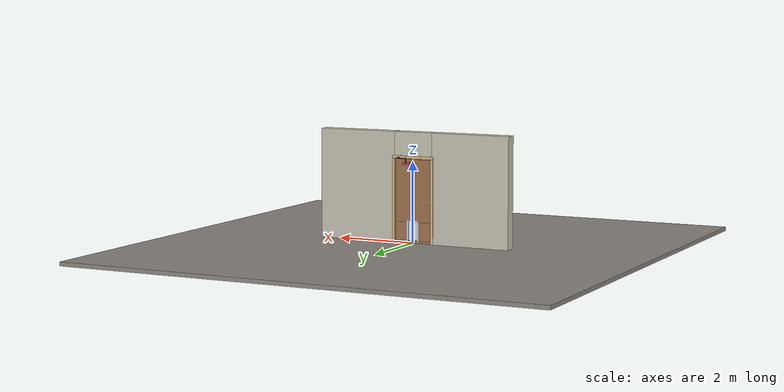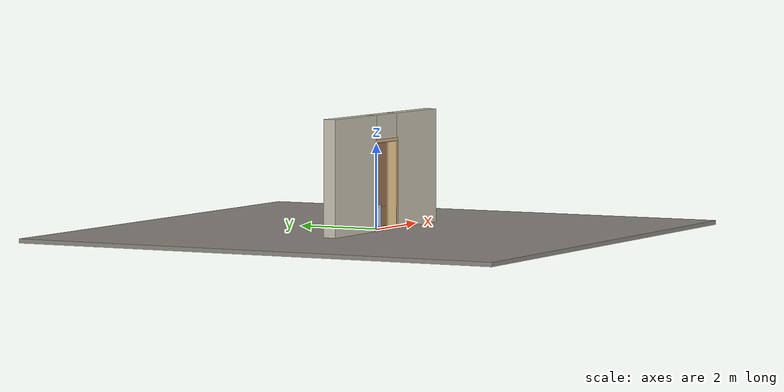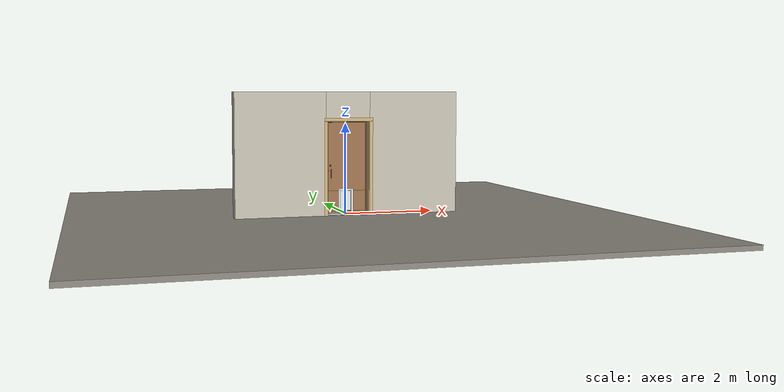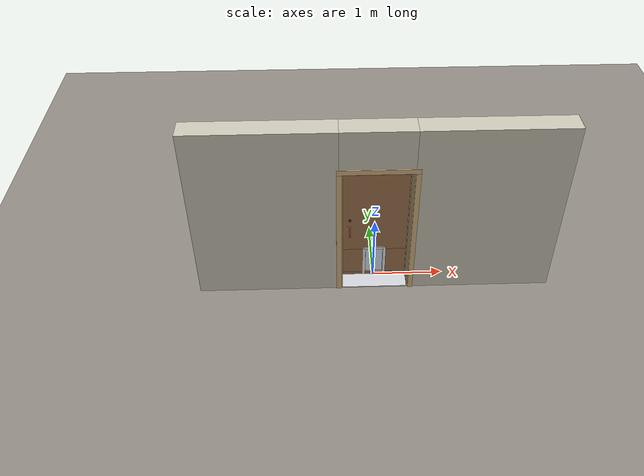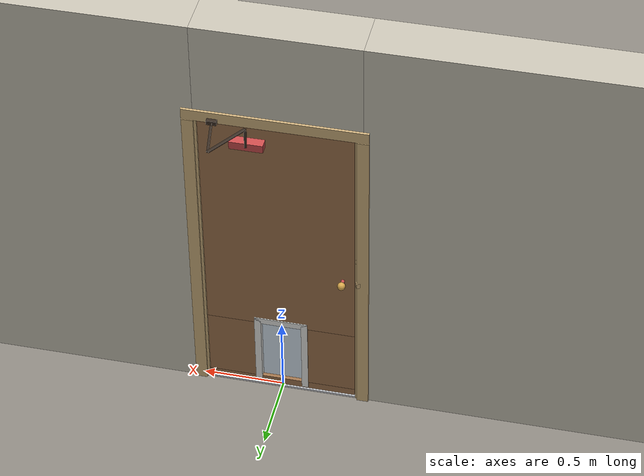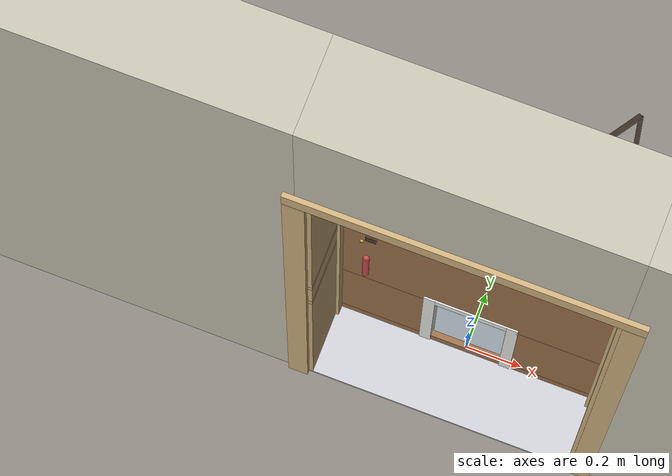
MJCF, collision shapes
<?xml version="1.0" ?>
<mujoco model="db0767_swing_single_full">
  <compiler angle="radian" meshdir="../../hardware" texturedir="../../textures" autolimits="true" inertiafromgeom="false"/>
  <option timestep="0.002" integrator="implicitfast" cone="elliptic" impratio="10" noslip_iterations="3">
    <flag multiccd="enable"/>
  </option>
  <size memory="16M"/>
  <default>
    <geom condim="4" solref="0.005 1" solimp="0.95 0.99 0.001"/>
    <joint solreflimit="0.005 1" solimplimit="0.95 0.99 0.001"/>
    <tendon solreflimit="0.005 1"/>
    <equality solref="0.002 1"/>
  </default>
  <visual>
    <headlight ambient="0.4 0.4 0.4" diffuse="0.7 0.7 0.7" specular="0.2 0.2 0.2"/>
    <quality shadowsize="4096"/>
    <map znear="0.01" zfar="60"/>
  </visual>
  <asset>
    <mesh name="closer_body_78399c60f5" file="closer_body_78399c60f5.obj"/>
    <mesh name="cyl_face_e9e5036966" file="cyl_face_e9e5036966.obj"/>
    <mesh name="handleset_beb5526ad2" file="handleset_beb5526ad2.obj"/>
    <mesh name="hinge_2af0f4d6ca" file="hinge_2af0f4d6ca.obj"/>
    <mesh name="hinge_jamb_c0c0a62ada" file="hinge_jamb_c0c0a62ada.obj"/>
    <mesh name="knob_d1888f6f03" file="knob_d1888f6f03.obj"/>
    <material name="mat_floor" rgba="0.55 0.53 0.5 1" specular="0.2" shininess="0.15" reflectance="0"/>
    <material name="mat_wall" rgba="0.78 0.76 0.7 1" specular="0.2" shininess="0.1" reflectance="0"/>
    <material name="mat_leaf" rgba="0.62 0.45 0.3 1" specular="0.2" shininess="0.5" reflectance="0"/>
    <material name="mat_glass" rgba="0.85 0.92 0.95 0.25" specular="0.2" shininess="0.95" reflectance="0.1"/>
    <material name="mat_hinge" rgba="0.65 0.66 0.68 1" specular="0.74" shininess="0.5" reflectance="0.36"/>
    <material name="mat_op_bronze" rgba="0.3 0.22 0.15 1" specular="0.74" shininess="0.5" reflectance="0.36"/>
    <material name="mat_op_brass" rgba="0.85 0.66 0.3 1" specular="0.8" shininess="0.75" reflectance="0.4"/>
    <material name="mat_trim" rgba="0.85 0.66 0.3 1" specular="0.8" shininess="0.75" reflectance="0.4"/>
    <material name="mat_bolt" rgba="0.85 0.66 0.3 1" specular="0.8" shininess="0.75" reflectance="0.4"/>
    <material name="mat_deadbolt" rgba="0.85 0.66 0.3 1" specular="0.8" shininess="0.75" reflectance="0.4"/>
    <material name="mat_frame" rgba="0.82 0.7 0.5 1" specular="0.2" shininess="0.45" reflectance="0"/>
    <material name="mat_seal" rgba="0.1 0.1 0.1 1" specular="0.2" shininess="0.1" reflectance="0"/>
    <material name="mat_threshold" rgba="0.8 0.81 0.83 1" specular="0.8" shininess="0.6" reflectance="0.4"/>
    <material name="mat_closer" rgba="0.22 0.17 0.13 1" specular="0.8" shininess="0.6" reflectance="0.4"/>
    <material name="mat_petframe" rgba="0.92 0.92 0.9 1" specular="0.2" shininess="0.6" reflectance="0"/>
    <material name="mat_petflap" rgba="0.85 0.9 0.95 0.45" specular="0.2" shininess="0.7" reflectance="0.1"/>
    <texture name="skybox" type="skybox" builtin="gradient" rgb1="0.6 0.7 0.85" rgb2="0.9 0.92 0.95" width="256" height="256"/>
  </asset>
  <worldbody>
    <light name="sun" pos="1.5 -2.5 4" dir="-0.3 0.5 -0.8" directional="true" diffuse="0.8 0.8 0.8" specular="0.3 0.3 0.3" castshadow="true"/>
    <light name="fill" pos="-1.5 2.5 3" dir="0.3 -0.5 -0.7" directional="true" diffuse="0.35 0.35 0.4" castshadow="false"/>
    <camera name="robot_view" pos="0 -2.663187 1.734312" xyaxes="1 0 0 0 0.26963 0.962964" fovy="52"/>
    <camera name="far_view" pos="0 2.421187 1.734312" xyaxes="-1 0 0 0 -0.26963 0.962964" fovy="52"/>
    <camera name="iso" pos="-1.932062 -2.256438 2.141063" xyaxes="0.741536 -0.670913 0 0.242917 0.268487 0.932151" fovy="46"/>
    <camera name="detail_handle" pos="-0.1715 -0.882 1.185" xyaxes="0.97561 0.219512 0 -0.070934 0.315262 0.94635" fovy="38"/>
    <geom name="floor" type="box" size="6 6 0.05" pos="0 0 -0.05" material="mat_floor" group="0" contype="1" conaffinity="1" friction="0.8 0.005 0.0001" density="2400"/>
    <geom name="wall_left" type="box" size="0.99525 0.15 1.35" pos="-1.50475 -0.121 1.35" material="mat_wall" group="0" contype="1" conaffinity="1" friction="0.6 0.005 0.0001" density="800"/>
    <geom name="wall_right" type="box" size="1.01025 0.15 1.35" pos="1.48975 -0.121 1.35" material="mat_wall" group="0" contype="1" conaffinity="1" friction="0.6 0.005 0.0001" density="800"/>
    <geom name="wall_header" type="box" size="0.4945 0.15 0.303" pos="-0.015 -0.121 2.397" material="mat_wall" group="0" contype="1" conaffinity="1" friction="0.6 0.005 0.0001" density="800"/>
    <geom name="hinge_0_jamb" type="mesh" mesh="hinge_jamb_c0c0a62ada" pos="0.4575 0.029 0.267" quat="0 0 0 1" material="mat_hinge" group="1" contype="0" conaffinity="0" density="7850"/>
    <geom name="hinge_1_jamb" type="mesh" mesh="hinge_jamb_c0c0a62ada" pos="0.4575 0.029 1.029" quat="0 0 0 1" material="mat_hinge" group="1" contype="0" conaffinity="0" density="7850"/>
    <geom name="hinge_2_jamb" type="mesh" mesh="hinge_jamb_c0c0a62ada" pos="0.4575 0.029 1.861" quat="0 0 0 1" material="mat_hinge" group="1" contype="0" conaffinity="0" density="7850"/>
    <geom name="leaf_deadbolt_strike_b" type="box" size="0.0155 0.003 0.0005" pos="-0.46 0 1.1215" quat="0.5 0.5 0.5 0.5" material="mat_deadbolt" group="1" contype="0" conaffinity="0" density="7800"/>
    <geom name="leaf_deadbolt_strike_l" type="box" size="0.003 0.0155 0.0005" pos="-0.46 -0.0125 1.14" quat="0.5 0.5 0.5 0.5" material="mat_deadbolt" group="1" contype="0" conaffinity="0" density="7800"/>
    <geom name="leaf_deadbolt_strike_t" type="box" size="0.0155 0.003 0.0005" pos="-0.46 0 1.1585" quat="0.5 0.5 0.5 0.5" material="mat_deadbolt" group="1" contype="0" conaffinity="0" density="7800"/>
    <geom name="leaf_deadbolt_strike_r" type="box" size="0.003 0.0155 0.0005" pos="-0.46 0.0125 1.14" quat="0.5 0.5 0.5 0.5" material="mat_deadbolt" group="1" contype="0" conaffinity="0" density="7800"/>
    <geom name="jamb_hinge" type="box" size="0.0095 0.15 1.0225" pos="0.47 -0.121 1.0225" material="mat_frame" group="0" contype="1" conaffinity="1" friction="0.6 0.005 0.0001" density="400"/>
    <geom name="strike_965_wall_n" type="box" size="0.0245 0.131575 0.0167" pos="-0.485 -0.139425 0.965" material="mat_frame" group="0" contype="1" conaffinity="1" friction="0.6 0.005 0.0001" density="400"/>
    <geom name="strike_965_wall_p" type="box" size="0.0245 0.008 0.0167" pos="-0.485 0.01585 0.965" material="mat_frame" group="0" contype="1" conaffinity="1" friction="0.6 0.005 0.0001" density="400"/>
    <geom name="strike_965_ramp" type="box" size="0.0245 0.01649 0.0167" pos="-0.489636 0.028673 0.965" quat="0.977148 0 0 0.212558" material="mat_frame" group="0" contype="1" conaffinity="1" friction="0.12 0.005 0.0001" density="400"/>
    <geom name="strike_965_back" type="box" size="0.01615 0.00785 0.0167" pos="-0.49335 0 0.965" material="mat_frame" group="0" contype="1" conaffinity="1" friction="0.6 0.005 0.0001" density="400"/>
    <geom name="strike_1140_wall_n" type="box" size="0.0245 0.13075 0.0155" pos="-0.485 -0.14025 1.14" material="mat_frame" group="0" contype="1" conaffinity="1" friction="0.6 0.005 0.0001" density="400"/>
    <geom name="strike_1140_wall_p" type="box" size="0.0245 0.00975 0.0155" pos="-0.485 0.01925 1.14" material="mat_frame" group="0" contype="1" conaffinity="1" friction="0.6 0.005 0.0001" density="400"/>
    <geom name="strike_1140_back" type="box" size="0.0098 0.0095 0.0155" pos="-0.4997 0 1.14" material="mat_frame" group="0" contype="1" conaffinity="1" friction="0.6 0.005 0.0001" density="400"/>
    <geom name="jamb_strike_0" type="box" size="0.0245 0.15 0.47415" pos="-0.485 -0.121 0.47415" material="mat_frame" group="0" contype="1" conaffinity="1" friction="0.6 0.005 0.0001" density="400"/>
    <geom name="jamb_strike_1" type="box" size="0.0245 0.15 0.0714" pos="-0.485 -0.121 1.0531" material="mat_frame" group="0" contype="1" conaffinity="1" friction="0.6 0.005 0.0001" density="400"/>
    <geom name="jamb_strike_2" type="box" size="0.0245 0.15 0.44475" pos="-0.485 -0.121 1.60025" material="mat_frame" group="0" contype="1" conaffinity="1" friction="0.6 0.005 0.0001" density="400"/>
    <geom name="jamb_head" type="box" size="0.4945 0.15 0.0095" pos="-0.015 -0.121 2.0545" material="mat_frame" group="0" contype="1" conaffinity="1" friction="0.6 0.005 0.0001" density="400"/>
    <geom name="head_stud" type="box" size="0.4945 0.15 0.015" pos="-0.015 -0.121 2.079" material="mat_wall" group="0" contype="1" conaffinity="1" friction="0.6 0.005 0.0001" density="500"/>
    <geom name="stop_hinge" type="box" size="0.0055 0.016 1.0225" pos="0.455 -0.0385 1.0225" material="mat_frame" group="0" contype="1" conaffinity="1" friction="0.6 0.005 0.0001" density="400"/>
    <geom name="stop_strike" type="box" size="0.0055 0.016 1.0225" pos="-0.455 -0.0385 1.0225" material="mat_frame" group="0" contype="1" conaffinity="1" friction="0.6 0.005 0.0001" density="400"/>
    <geom name="stop_head" type="box" size="0.4605 0.016 0.0055" pos="0 -0.0385 2.0395" material="mat_frame" group="0" contype="1" conaffinity="1" friction="0.6 0.005 0.0001" density="400"/>
    <geom name="seal_hinge" type="box" size="0.004 0.003 1.0225" pos="0.4575 -0.025 1.0225" material="mat_seal" group="1" contype="0" conaffinity="0" density="1100"/>
    <geom name="seal_strike" type="box" size="0.004 0.003 1.0225" pos="-0.4575 -0.025 1.0225" material="mat_seal" group="1" contype="0" conaffinity="0" density="1100"/>
    <geom name="seal_head" type="box" size="0.4405 0.003 0.008" pos="0 -0.025 2.033" material="mat_seal" group="1" contype="0" conaffinity="0" density="1100"/>
    <geom name="casing_l_n" type="box" size="0.035 0.008 1.032" pos="-0.5095 -0.279 1.0225" material="mat_frame" group="2" contype="0" conaffinity="0" density="400"/>
    <geom name="casing_r_n" type="box" size="0.035 0.008 1.032" pos="0.5095 -0.279 1.0225" material="mat_frame" group="2" contype="0" conaffinity="0" density="400"/>
    <geom name="casing_h_n" type="box" size="0.5445 0.008 0.035" pos="0 -0.279 2.094" material="mat_frame" group="2" contype="0" conaffinity="0" density="400"/>
    <geom name="casing_l_p" type="box" size="0.035 0.008 1.032" pos="-0.5095 0.037 1.0225" material="mat_frame" group="2" contype="0" conaffinity="0" density="400"/>
    <geom name="casing_r_p" type="box" size="0.035 0.008 1.032" pos="0.5095 0.037 1.0225" material="mat_frame" group="2" contype="0" conaffinity="0" density="400"/>
    <geom name="casing_h_p" type="box" size="0.5445 0.008 0.035" pos="0 0.037 2.094" material="mat_frame" group="2" contype="0" conaffinity="0" density="400"/>
    <geom name="threshold" type="box" size="0.4795 0.15 0.0065" pos="0 -0.121 0.0065" material="mat_threshold" group="0" contype="1" conaffinity="1" friction="0.5 0.005 0.0001" density="2700"/>
    <geom name="closer_bracket" type="box" size="0.03 0.012 0.014" pos="0.3605 0.057 2.075" material="mat_closer" group="1" contype="0" conaffinity="0" density="2700"/>
    <site name="approach_point" pos="0 -1.5 0" quat="1 0 0 0" size="0.05" rgba="0.2 0.9 0.2 0.5" group="4"/>
    <site name="goal_point" pos="0 1.5 0" quat="1 0 0 0" size="0.05" rgba="0.2 0.9 0.2 0.5" group="4"/>
    <site name="door_plane_center" pos="0 0 1.0225" quat="1 0 0 0" size="0.02" rgba="0.2 0.9 0.2 0.5" group="4"/>
    <body name="leaf" pos="0.4605 0 0">
      <inertial pos="-0.44417 0.005783 1.099601" mass="42.910923" quat="0.517011 -0.513135 -0.494132 -0.474578" diaginertia="2.734254468 17.435713229 20.125629158"/>
      <joint name="leaf_hinge" type="hinge" axis="0 0 -1" pos="-0.003 0.029 0" limited="true" range="0 1.570796" solreflimit="0.02 1" damping="6.25611" frictionloss="1.71993" stiffness="10.625184" springref="-1.309154" armature="0.02"/>
      <geom name="leaf_slab_below" type="box" size="0.457 0.022 0.0245" pos="-0.46 0 0.0415" material="mat_leaf" group="0" contype="1" conaffinity="1" friction="0.4 0.005 0.0001" density="1"/>
      <geom name="leaf_slab_above" type="box" size="0.457 0.022 0.7615" pos="-0.46 0 1.2795" material="mat_leaf" group="0" contype="1" conaffinity="1" friction="0.4 0.005 0.0001" density="1"/>
      <geom name="leaf_slab_left" type="box" size="0.1655 0.022 0.226" pos="-0.7515 0 0.292" material="mat_leaf" group="0" contype="1" conaffinity="1" friction="0.4 0.005 0.0001" density="1"/>
      <geom name="leaf_slab_right" type="box" size="0.1655 0.022 0.226" pos="-0.1685 0 0.292" material="mat_leaf" group="0" contype="1" conaffinity="1" friction="0.4 0.005 0.0001" density="1"/>
      <geom name="hinge_0" type="mesh" mesh="hinge_2af0f4d6ca" pos="-0.003 0.029 0.267" quat="0 0 0 1" material="mat_hinge" group="1" contype="0" conaffinity="0" density="7850"/>
      <geom name="hinge_1" type="mesh" mesh="hinge_2af0f4d6ca" pos="-0.003 0.029 1.029" quat="0 0 0 1" material="mat_hinge" group="1" contype="0" conaffinity="0" density="7850"/>
      <geom name="hinge_2" type="mesh" mesh="hinge_2af0f4d6ca" pos="-0.003 0.029 1.861" quat="0 0 0 1" material="mat_hinge" group="1" contype="0" conaffinity="0" density="7850"/>
      <geom name="leaf_handleset_n" type="mesh" mesh="handleset_beb5526ad2" pos="-0.812 -0.022 0.905" quat="0.707107 0.707107 0 0" material="mat_op_bronze" group="1" contype="0" conaffinity="0" density="3000"/>
      <geom name="leaf_handleset_col_n" type="capsule" size="0.011 0.09" pos="-0.812 -0.082 0.905" material="mat_op_bronze" group="3" contype="1" conaffinity="1" rgba="0.8 0.3 0.3 0.25" friction="0.7 0.01 0.0001" density="3000"/>
      <geom name="leaf_latch_bolt_faceplate" type="box" size="0.0006 0.01235 0.0267" pos="-0.9164 0 0.965" material="mat_bolt" group="1" contype="0" conaffinity="0" density="8500"/>
      <geom name="leaf_deadbolt_faceplate" type="box" size="0.0006 0.014 0.0245" pos="-0.9164 0 1.14" material="mat_deadbolt" group="1" contype="0" conaffinity="0" density="8500"/>
      <geom name="leaf_deadbolt_cylinder_face" type="mesh" mesh="cyl_face_e9e5036966" pos="-0.852 -0.022 1.14" quat="0 0 -0.707107 0.707107" material="mat_deadbolt" group="1" contype="0" conaffinity="0" density="7100"/>
      <geom name="closer_body" type="mesh" mesh="closer_body_78399c60f5" pos="-0.3 0.022 1.944" quat="0 0 0.707107 0.707107" material="mat_closer" group="1" contype="0" conaffinity="0" density="2000"/>
      <geom name="closer_body_col" type="box" size="0.1 0.03 0.025" pos="-0.3 0.052 1.944" material="mat_closer" group="3" contype="1" conaffinity="1" rgba="0.8 0.3 0.3 0.25" friction="0.6 0.005 0.0001" density="2000"/>
      <geom name="closer_pinion_shaft" type="cylinder" size="0.008 0.0655" pos="-0.3 0.08 2.0095" material="mat_closer" group="1" contype="0" conaffinity="0" density="2700"/>
      <geom name="pet_frame_top" type="box" size="0.165 0.028 0.02" pos="-0.46 0 0.537" material="mat_petframe" group="2" contype="0" conaffinity="0" density="1200"/>
      <geom name="pet_frame_l" type="box" size="0.02 0.028 0.265" pos="-0.605 0 0.292" material="mat_petframe" group="2" contype="0" conaffinity="0" density="1200"/>
      <geom name="pet_frame_r" type="box" size="0.02 0.028 0.265" pos="-0.315 0 0.292" material="mat_petframe" group="2" contype="0" conaffinity="0" density="1200"/>
      <site name="leaf_handleset_grip_n" pos="-0.812 -0.082 0.905" quat="1 0 0 0" size="0.012" rgba="0.2 0.9 0.2 0.5" group="4"/>
      <site name="leaf_edge_mid" pos="-0.917 0 1.012" quat="1 0 0 0" size="0.02" rgba="0.2 0.9 0.2 0.5" group="4"/>
      <body name="leaf_handle" pos="-0.847 0 0.965">
        <inertial pos="0 0.052948 0" mass="0.60261" quat="0.5 0.5 0.5 0.5" diaginertia="0.000156736 0.000451151 0.000451151"/>
        <joint name="leaf_handle_hinge" type="hinge" axis="0 1 0" limited="true" range="0 0.87" damping="0.142525" frictionloss="0.038" stiffness="0.5" springref="-0.5" armature="0.01"/>
        <geom name="leaf_handle_spindle" type="cylinder" size="0.006 0.03" pos="0 0 0" quat="0.707107 -0.707107 0 0" material="mat_op_brass" group="1" contype="0" conaffinity="0" density="7850"/>
        <geom name="leaf_handle_knob_p" type="mesh" mesh="knob_d1888f6f03" pos="0 0.022 0" quat="0 0 0.707107 0.707107" material="mat_op_brass" group="1" contype="0" conaffinity="0" density="3000"/>
        <geom name="leaf_handle_knob_col_p" type="sphere" size="0.0243" pos="0 0.0685 0" material="mat_op_brass" group="0" contype="1" conaffinity="1" friction="0.9 0.01 0.0001" density="3000"/>
        <geom name="leaf_handle_knob_neck_p" type="cylinder" size="0.011 0.012" pos="0 0.034 0" quat="0.707107 -0.707107 0 0" material="mat_op_brass" group="3" contype="1" conaffinity="1" rgba="0.8 0.3 0.3 0.25" friction="0.6 0.005 0.0001" density="3000"/>
        <site name="leaf_handle_grip_p" pos="0 0.0685 0" quat="1 0 0 0" size="0.012" rgba="0.2 0.9 0.2 0.5" group="4"/>
      </body>
      <body name="leaf_thumbpiece" pos="-0.812 -0.04 1.077">
        <inertial pos="0 0.004 0" mass="0.05184" quat="-0.5 0.5 0.5 0.5" diaginertia="0.000006981 0.000007488 0.000009124"/>
        <joint name="leaf_thumbpiece_hinge" type="hinge" axis="-1 0 0" pos="0 0 0.02" limited="true" range="0 0.35" damping="0.219407" frictionloss="0.058" stiffness="1.2" springref="-0.416667" armature="0.01"/>
        <geom name="leaf_thumbpiece_geom" type="box" size="0.018 0.004 0.02" pos="0 0 0" material="mat_op_bronze" group="0" contype="1" conaffinity="1" friction="0.6 0.005 0.0001" density="3000"/>
        <geom name="leaf_thumbpiece_boss" type="box" size="0.01 0.012 0.006" pos="0 0.012 0" material="mat_op_bronze" group="1" contype="0" conaffinity="0" density="3000"/>
        <site name="leaf_thumb_push" pos="0 -0.005 0.01" quat="1 0 0 0" size="0.01" rgba="0.2 0.9 0.2 0.5" group="4"/>
      </body>
      <body name="leaf_latch_bolt" pos="-0.917 0 0.965">
        <inertial pos="0.00865 0 0" mass="0.041419" quat="0.92388 0.382683 0 0" diaginertia="0.000000798 0.000005598 0.000005598"/>
        <joint name="leaf_latch_bolt_slide" type="slide" axis="1 0 0" limited="true" range="0 0.0127" damping="2" frictionloss="0.3" stiffness="300" springref="-0.008333" armature="0.1"/>
        <geom name="leaf_latch_bolt_capsule" type="capsule" size="0.00635 0.015" pos="0.00865 0 0" quat="0.707107 0 -0.707107 0" material="mat_bolt" group="0" contype="1" conaffinity="1" friction="0.2 0.005 0.0001" density="8500"/>
      </body>
      <body name="leaf_deadbolt" pos="-0.917 0 1.14">
        <inertial pos="0.0023 0 0" mass="0.18836" quat="0 0 0.707107 0.707107" diaginertia="0.000013829 0.000052194 0.000057986"/>
        <geom name="leaf_deadbolt_box" type="box" size="0.0277 0.008 0.0125" pos="0.0023 0 0" material="mat_deadbolt" group="0" contype="1" conaffinity="1" friction="0.3 0.005 0.0001" density="8500"/>
      </body>
      <body name="closer_arm_main" pos="-0.3 0.08 2.075" quat="0.881485 0 0 0.472212">
        <inertial pos="0.14 0 0" mass="0.12096" quat="1 0 0 0" diaginertia="0.000003588 0.00079128 0.000792852"/>
        <joint name="closer_pinion" type="hinge" axis="0 0 1" limited="false" damping="0.01" armature="0.002"/>
        <geom name="closer_arm_main_geom" type="box" size="0.14 0.008 0.005" pos="0.14 0 0" material="mat_closer" group="1" contype="0" conaffinity="0" density="2700"/>
        <body name="closer_arm_fore" pos="0.28 0 0" quat="0.371222 0 0 -0.928544">
          <inertial pos="0.128088 0 0" mass="0.076531" quat="1 0 0 0" diaginertia="0.000001771 0.000437665 0.000438201"/>
          <joint name="closer_elbow" type="hinge" axis="0 0 1" limited="false" damping="0.01" armature="0.002"/>
          <geom name="closer_arm_fore_geom" type="box" size="0.1125 0.007 0.004" pos="0.1125 0 0" material="mat_closer" group="1" contype="0" conaffinity="0" density="2700"/>
          <geom name="closer_fore_neck" type="box" size="0.0175 0.003 0.003" pos="0.2425 0 0" material="mat_closer" group="1" contype="0" conaffinity="0" density="2700"/>
          <geom name="closer_fore_pivot" type="cylinder" size="0.005 0.012" pos="0.26 0 0" material="mat_closer" group="1" contype="0" conaffinity="0" density="2700"/>
        </body>
      </body>
      <body name="pet_flap" pos="-0.46 0 0.517">
        <inertial pos="0 0 -0.225" mass="0.224067" quat="-0.5 0.5 0.5 0.5" diaginertia="0.001093819 0.003648179 0.0047414"/>
        <joint name="pet_flap_hinge" type="hinge" axis="-1 0 0" limited="true" range="-1.45 1.45" damping="0.02" frictionloss="0.02" armature="0.005"/>
        <geom name="pet_flap_geom" type="box" size="0.121 0.002 0.221" pos="0 0 -0.225" material="mat_petflap" group="0" contype="1" conaffinity="1" friction="0.6 0.005 0.0001" density="1250"/>
      </body>
    </body>
  </worldbody>
  <tendon>
    <fixed name="leaf_thumb_coupling" limited="true" range="0 10">
      <joint joint="leaf_latch_bolt_slide" coef="1"/>
      <joint joint="leaf_thumbpiece_hinge" coef="-0.039688"/>
    </fixed>
    <fixed name="leaf_latch_bolt_coupling" limited="true" range="0 10">
      <joint joint="leaf_latch_bolt_slide" coef="1"/>
      <joint joint="leaf_handle_hinge" coef="-0.015679"/>
    </fixed>
  </tendon>
  <equality>
    <connect name="closer_arm_connect" body1="closer_arm_fore" body2="world" anchor="0.26 0 0" active="true"/>
  </equality>
  <contact>
    <exclude body1="closer_arm_main" body2="leaf"/>
    <exclude body1="closer_arm_fore" body2="leaf"/>
    <exclude body1="closer_arm_main" body2="closer_arm_fore"/>
  </contact>
  <sensor>
    <jointpos name="leaf_hinge_pos" joint="leaf_hinge"/>
    <jointvel name="leaf_hinge_vel" joint="leaf_hinge"/>
    <jointpos name="leaf_handle_hinge_pos" joint="leaf_handle_hinge"/>
    <jointvel name="leaf_handle_hinge_vel" joint="leaf_handle_hinge"/>
    <jointpos name="leaf_thumbpiece_hinge_pos" joint="leaf_thumbpiece_hinge"/>
    <jointvel name="leaf_thumbpiece_hinge_vel" joint="leaf_thumbpiece_hinge"/>
    <jointpos name="leaf_latch_bolt_slide_pos" joint="leaf_latch_bolt_slide"/>
    <jointvel name="leaf_latch_bolt_slide_vel" joint="leaf_latch_bolt_slide"/>
    <jointpos name="pet_flap_hinge_pos" joint="pet_flap_hinge"/>
    <jointvel name="pet_flap_hinge_vel" joint="pet_flap_hinge"/>
  </sensor>
</mujoco>
